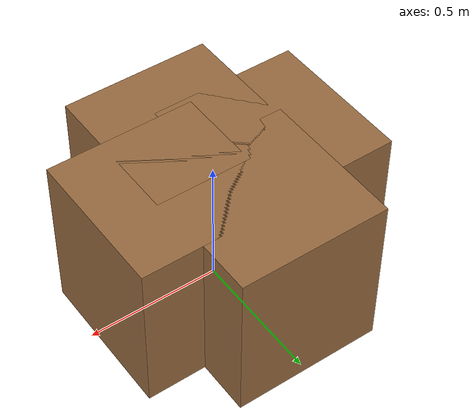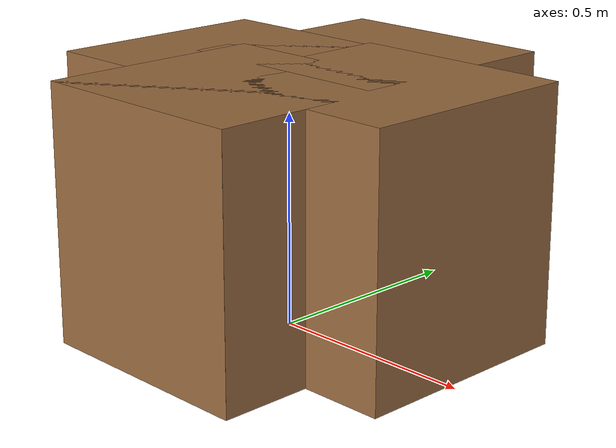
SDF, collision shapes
<?xml version='1.0' encoding='utf-8'?>
<sdf version="1.6">
  <model name="side_table_1">
    <link name="link_1">
      <pose frame="">0.007786 -0.167928 0 0 -0 0</pose>
         <visual name="visual">
        <pose frame="">0 0 0 0 -0 0</pose>
        <geometry>
          <mesh>
            <uri>model://side_table_1/meshes/middle.dae</uri>
            <scale>1 1 1</scale>
          </mesh>
        </geometry>
         <material>
          <ambient>0.50 0.35 0.20 1</ambient><diffuse>0.60 0.42 0.25 1</diffuse><specular>0.10 0.10 0.10 1</specular></material>
        <cast_shadows>1</cast_shadows>
        <transparency>0</transparency>
      </visual>
      <collision name="collision">
        <laser_retro>0</laser_retro>
        <max_contacts>10</max_contacts>
        <pose frame="">0 0 0.3000 0 0 0</pose>
        <geometry>
          <box><size>0.55 0.55 0.6</size></box></geometry>
       </collision>
    </link>
    <link name="link_2">
      <pose frame="">0.007887 -0.167821 0 0 -0 0</pose>
        <visual name="visual">
        <pose frame="">0 0 0 0 -0 0</pose>
        <geometry>
          <mesh>
            <uri>model://side_table_1/meshes/leg.dae</uri>
            <scale>1 1 1</scale>
          </mesh>
        </geometry>
               <material>
          <ambient>0.50 0.35 0.20 1</ambient><diffuse>0.60 0.42 0.25 1</diffuse><specular>0.10 0.10 0.10 1</specular></material>
        <cast_shadows>1</cast_shadows>
        <transparency>0</transparency>
      </visual>
      <collision name="collision">
        <laser_retro>0</laser_retro>
        <max_contacts>10</max_contacts>
        <pose frame="">0 0 0.3000 0 0 0</pose>
        <geometry>
          <box><size>0.55 0.55 0.6</size></box></geometry>
         </collision>
    </link>
    <link name="link_2_clone">
      <pose frame="">0.208023 0.051865 0 0 -0 1.57</pose>
       <visual name="visual">
        <pose frame="">0 0 0 0 -0 0</pose>
        <geometry>
          <mesh>
            <uri>model://side_table_1/meshes/leg.dae</uri>
            <scale>1 1 1</scale>
          </mesh>
        </geometry>
               <material>
          <ambient>0.50 0.35 0.20 1</ambient><diffuse>0.60 0.42 0.25 1</diffuse><specular>0.10 0.10 0.10 1</specular></material>
        <cast_shadows>1</cast_shadows>
        <transparency>0</transparency>
      </visual>
      <collision name="collision">
        <laser_retro>0</laser_retro>
        <max_contacts>10</max_contacts>
        <pose frame="">0 0 0.3000 0 0 0</pose>
        <geometry>
          <box><size>0.55 0.55 0.6</size></box></geometry>
       </collision>
    </link>
    <link name="link_2_clone_0">
      <pose frame="">-0.212235 0.031759 0 0 0 -1.57</pose>
         <visual name="visual">
        <pose frame="">0 0 0 0 -0 0</pose>
        <geometry>
          <mesh>
            <uri>model://side_table_1/meshes/leg.dae</uri>
            <scale>1 1 1</scale>
          </mesh>
        </geometry>
               <material>
          <ambient>0.50 0.35 0.20 1</ambient><diffuse>0.60 0.42 0.25 1</diffuse><specular>0.10 0.10 0.10 1</specular></material>
        <cast_shadows>1</cast_shadows>
        <transparency>0</transparency>
      </visual>
      <collision name="collision">
        <laser_retro>0</laser_retro>
        <max_contacts>10</max_contacts>
        <pose frame="">0 0 0.3000 0 0 0</pose>
        <geometry>
          <box><size>0.55 0.55 0.6</size></box></geometry>
      </collision>
    </link>
    <link name="link_2_clone_clone">
      <pose frame="">-0.011459 0.252125 0 0 -0 3.14</pose>
        <visual name="visual">
        <pose frame="">0 0 0 0 -0 0</pose>
        <geometry>
          <mesh>
            <uri>model://side_table_1/meshes/leg.dae</uri>
            <scale>1 1 1</scale>
          </mesh>
        </geometry>
               <material>
          <ambient>0.50 0.35 0.20 1</ambient><diffuse>0.60 0.42 0.25 1</diffuse><specular>0.10 0.10 0.10 1</specular></material>
        <cast_shadows>1</cast_shadows>
        <transparency>0</transparency>
      </visual>
      <collision name="collision">
        <laser_retro>0</laser_retro>
        <max_contacts>10</max_contacts>
        <pose frame="">0 0 0.3000 0 0 0</pose>
        <geometry>
          <box><size>0.55 0.55 0.6</size></box></geometry>
       </collision>
    </link>
    <static>1</static>
    <allow_auto_disable>1</allow_auto_disable>
  </model>
</sdf>
